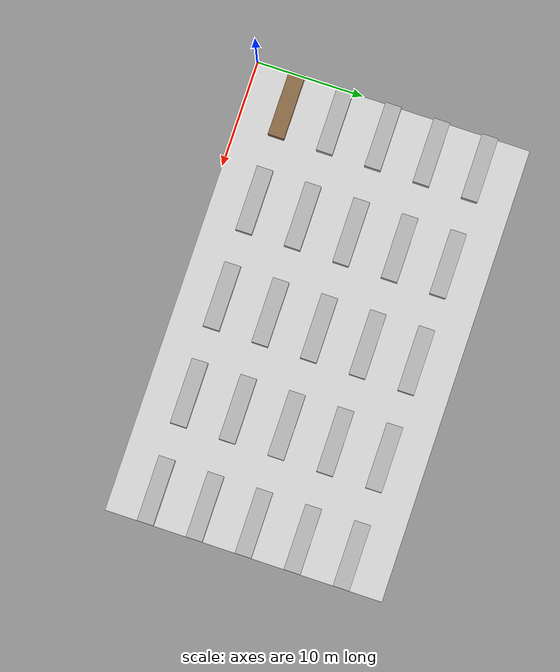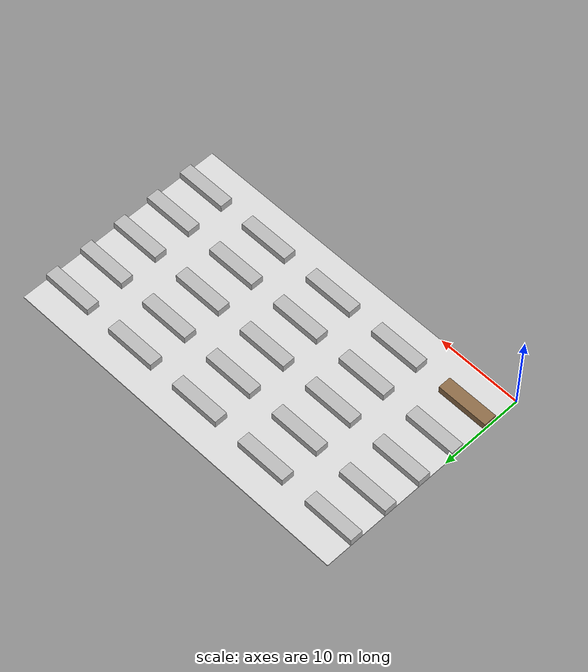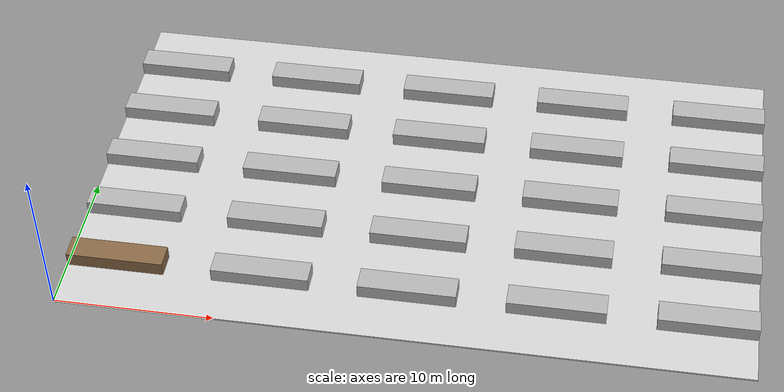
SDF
<?xml version="1.0" ?>
<sdf version="1.9">
  <world name="hippo_harvest">
    <gravity>0 0 -9.81</gravity>
    <magnetic_field>6e-06 2.3e-05 -4.2e-05</magnetic_field>
    <atmosphere type="adiabatic"/>

    <scene>
      <ambient>0.7 0.7 0.7 1</ambient>
      <background>0.95 0.95 0.95 1</background>
      <shadows>false</shadows>
    </scene>

    <model name="floor">
      <static>true</static>
      <link name="floor_link">
        <collision name="floor_collision">
          <geometry>
            <box>
              <size>42.672 25.908 0.1</size>
            </box>
          </geometry>
          <pose>21.336 12.954 -0.05 0 0 0</pose>
        </collision>
        <visual name="floor_visual">
          <geometry>
            <box>
              <size>42.672 25.908 0.1</size>
            </box>
          </geometry>
          <pose>21.336 12.954 -0.05 0 0 0</pose>
          <material>
            <ambient>0.85 0.85 0.85 1</ambient>
            <diffuse>0.85 0.85 0.85 1</diffuse>
          </material>
        </visual>
      </link>
    </model>

    <model name="table_template_notes">
      <static>true</static>
      <pose>0 0 0 0 0 0</pose>
      <link name="note">
        <visual name="hidden_visual">
          <geometry>
            <box>
              <size>0.001 0.001 0.001</size>
            </box>
          </geometry>
          <transparency>1.0</transparency>
        </visual>
      </link>
    </model>

    <model name="row1_table1">
      <static>true</static>
      <pose>3.048 3.810 0.45 0 0 0</pose>
      <link name="link">
        <collision name="collision">
          <geometry>
            <box>
              <size>6.096 1.524 0.9</size>
            </box>
          </geometry>
        </collision>
        <visual name="visual">
          <geometry>
            <box>
              <size>6.096 1.524 0.9</size>
            </box>
          </geometry>
          <material>
            <ambient>0.55 0.42 0.28 1</ambient>
            <diffuse>0.55 0.42 0.28 1</diffuse>
          </material>
        </visual>
      </link>
    </model>

    <model name="row1_table2">
      <static>true</static>
      <pose>12.192 3.810 0.45 0 0 0</pose>
      <link name="link">
        <collision name="collision"><geometry><box><size>6.096 1.524 0.9</size></box></geometry></collision>
        <visual name="visual"><geometry><box><size>6.096 1.524 0.9</size></box></geometry></visual>
      </link>
    </model>

    <model name="row1_table3">
      <static>true</static>
      <pose>21.336 3.810 0.45 0 0 0</pose>
      <link name="link">
        <collision name="collision"><geometry><box><size>6.096 1.524 0.9</size></box></geometry></collision>
        <visual name="visual"><geometry><box><size>6.096 1.524 0.9</size></box></geometry></visual>
      </link>
    </model>

    <model name="row1_table4">
      <static>true</static>
      <pose>30.480 3.810 0.45 0 0 0</pose>
      <link name="link">
        <collision name="collision"><geometry><box><size>6.096 1.524 0.9</size></box></geometry></collision>
        <visual name="visual"><geometry><box><size>6.096 1.524 0.9</size></box></geometry></visual>
      </link>
    </model>

    <model name="row1_table5">
      <static>true</static>
      <pose>39.624 3.810 0.45 0 0 0</pose>
      <link name="link">
        <collision name="collision"><geometry><box><size>6.096 1.524 0.9</size></box></geometry></collision>
        <visual name="visual"><geometry><box><size>6.096 1.524 0.9</size></box></geometry></visual>
      </link>
    </model>

    <model name="row2_table1">
      <static>true</static>
      <pose>3.048 8.382 0.45 0 0 0</pose>
      <link name="link">
        <collision name="collision"><geometry><box><size>6.096 1.524 0.9</size></box></geometry></collision>
        <visual name="visual"><geometry><box><size>6.096 1.524 0.9</size></box></geometry></visual>
      </link>
    </model>

    <model name="row2_table2">
      <static>true</static>
      <pose>12.192 8.382 0.45 0 0 0</pose>
      <link name="link">
        <collision name="collision"><geometry><box><size>6.096 1.524 0.9</size></box></geometry></collision>
        <visual name="visual"><geometry><box><size>6.096 1.524 0.9</size></box></geometry></visual>
      </link>
    </model>

    <model name="row2_table3">
      <static>true</static>
      <pose>21.336 8.382 0.45 0 0 0</pose>
      <link name="link">
        <collision name="collision"><geometry><box><size>6.096 1.524 0.9</size></box></geometry></collision>
        <visual name="visual"><geometry><box><size>6.096 1.524 0.9</size></box></geometry></visual>
      </link>
    </model>

    <model name="row2_table4">
      <static>true</static>
      <pose>30.480 8.382 0.45 0 0 0</pose>
      <link name="link">
        <collision name="collision"><geometry><box><size>6.096 1.524 0.9</size></box></geometry></collision>
        <visual name="visual"><geometry><box><size>6.096 1.524 0.9</size></box></geometry></visual>
      </link>
    </model>

    <model name="row2_table5">
      <static>true</static>
      <pose>39.624 8.382 0.45 0 0 0</pose>
      <link name="link">
        <collision name="collision"><geometry><box><size>6.096 1.524 0.9</size></box></geometry></collision>
        <visual name="visual"><geometry><box><size>6.096 1.524 0.9</size></box></geometry></visual>
      </link>
    </model>

    <model name="row3_table1">
      <static>true</static>
      <pose>3.048 12.954 0.45 0 0 0</pose>
      <link name="link">
        <collision name="collision"><geometry><box><size>6.096 1.524 0.9</size></box></geometry></collision>
        <visual name="visual"><geometry><box><size>6.096 1.524 0.9</size></box></geometry></visual>
      </link>
    </model>

    <model name="row3_table2">
      <static>true</static>
      <pose>12.192 12.954 0.45 0 0 0</pose>
      <link name="link">
        <collision name="collision"><geometry><box><size>6.096 1.524 0.9</size></box></geometry></collision>
        <visual name="visual"><geometry><box><size>6.096 1.524 0.9</size></box></geometry></visual>
      </link>
    </model>

    <model name="row3_table3">
      <static>true</static>
      <pose>21.336 12.954 0.45 0 0 0</pose>
      <link name="link">
        <collision name="collision"><geometry><box><size>6.096 1.524 0.9</size></box></geometry></collision>
        <visual name="visual"><geometry><box><size>6.096 1.524 0.9</size></box></geometry></visual>
      </link>
    </model>

    <model name="row3_table4">
      <static>true</static>
      <pose>30.480 12.954 0.45 0 0 0</pose>
      <link name="link">
        <collision name="collision"><geometry><box><size>6.096 1.524 0.9</size></box></geometry></collision>
        <visual name="visual"><geometry><box><size>6.096 1.524 0.9</size></box></geometry></visual>
      </link>
    </model>

    <model name="row3_table5">
      <static>true</static>
      <pose>39.624 12.954 0.45 0 0 0</pose>
      <link name="link">
        <collision name="collision"><geometry><box><size>6.096 1.524 0.9</size></box></geometry></collision>
        <visual name="visual"><geometry><box><size>6.096 1.524 0.9</size></box></geometry></visual>
      </link>
    </model>

    <model name="row4_table1">
      <static>true</static>
      <pose>3.048 17.526 0.45 0 0 0</pose>
      <link name="link">
        <collision name="collision"><geometry><box><size>6.096 1.524 0.9</size></box></geometry></collision>
        <visual name="visual"><geometry><box><size>6.096 1.524 0.9</size></box></geometry></visual>
      </link>
    </model>

    <model name="row4_table2">
      <static>true</static>
      <pose>12.192 17.526 0.45 0 0 0</pose>
      <link name="link">
        <collision name="collision"><geometry><box><size>6.096 1.524 0.9</size></box></geometry></collision>
        <visual name="visual"><geometry><box><size>6.096 1.524 0.9</size></box></geometry></visual>
      </link>
    </model>

    <model name="row4_table3">
      <static>true</static>
      <pose>21.336 17.526 0.45 0 0 0</pose>
      <link name="link">
        <collision name="collision"><geometry><box><size>6.096 1.524 0.9</size></box></geometry></collision>
        <visual name="visual"><geometry><box><size>6.096 1.524 0.9</size></box></geometry></visual>
      </link>
    </model>

    <model name="row4_table4">
      <static>true</static>
      <pose>30.480 17.526 0.45 0 0 0</pose>
      <link name="link">
        <collision name="collision"><geometry><box><size>6.096 1.524 0.9</size></box></geometry></collision>
        <visual name="visual"><geometry><box><size>6.096 1.524 0.9</size></box></geometry></visual>
      </link>
    </model>

    <model name="row4_table5">
      <static>true</static>
      <pose>39.624 17.526 0.45 0 0 0</pose>
      <link name="link">
        <collision name="collision"><geometry><box><size>6.096 1.524 0.9</size></box></geometry></collision>
        <visual name="visual"><geometry><box><size>6.096 1.524 0.9</size></box></geometry></visual>
      </link>
    </model>

    <model name="row5_table1">
      <static>true</static>
      <pose>3.048 22.098 0.45 0 0 0</pose>
      <link name="link">
        <collision name="collision"><geometry><box><size>6.096 1.524 0.9</size></box></geometry></collision>
        <visual name="visual"><geometry><box><size>6.096 1.524 0.9</size></box></geometry></visual>
      </link>
    </model>

    <model name="row5_table2">
      <static>true</static>
      <pose>12.192 22.098 0.45 0 0 0</pose>
      <link name="link">
        <collision name="collision"><geometry><box><size>6.096 1.524 0.9</size></box></geometry></collision>
        <visual name="visual"><geometry><box><size>6.096 1.524 0.9</size></box></geometry></visual>
      </link>
    </model>

    <model name="row5_table3">
      <static>true</static>
      <pose>21.336 22.098 0.45 0 0 0</pose>
      <link name="link">
        <collision name="collision"><geometry><box><size>6.096 1.524 0.9</size></box></geometry></collision>
        <visual name="visual"><geometry><box><size>6.096 1.524 0.9</size></box></geometry></visual>
      </link>
    </model>

    <model name="row5_table4">
      <static>true</static>
      <pose>30.480 22.098 0.45 0 0 0</pose>
      <link name="link">
        <collision name="collision"><geometry><box><size>6.096 1.524 0.9</size></box></geometry></collision>
        <visual name="visual"><geometry><box><size>6.096 1.524 0.9</size></box></geometry></visual>
      </link>
    </model>

    <model name="row5_table5">
      <static>true</static>
      <pose>39.624 22.098 0.45 0 0 0</pose>
      <link name="link">
        <collision name="collision"><geometry><box><size>6.096 1.524 0.9</size></box></geometry></collision>
        <visual name="visual"><geometry><box><size>6.096 1.524 0.9</size></box></geometry></visual>
      </link>
    </model>
  </world>
</sdf>
